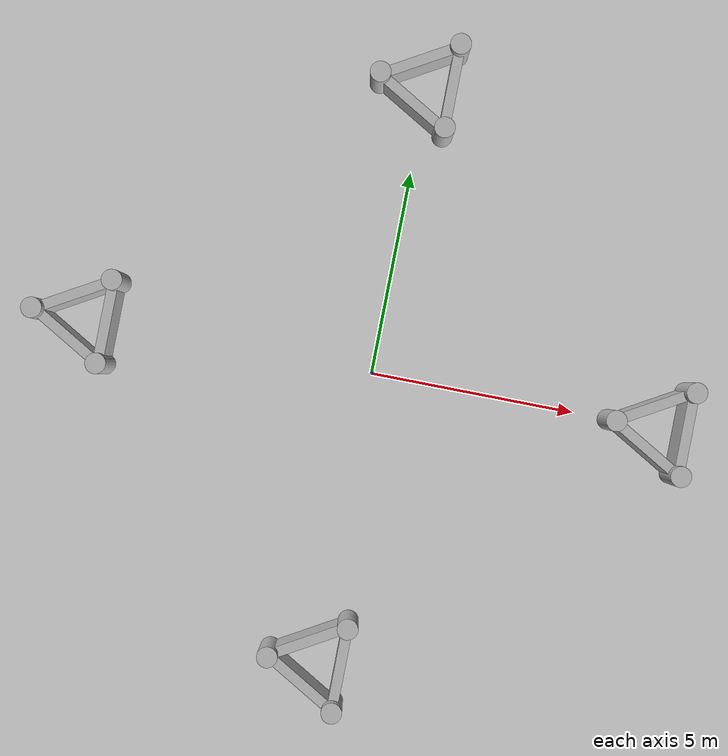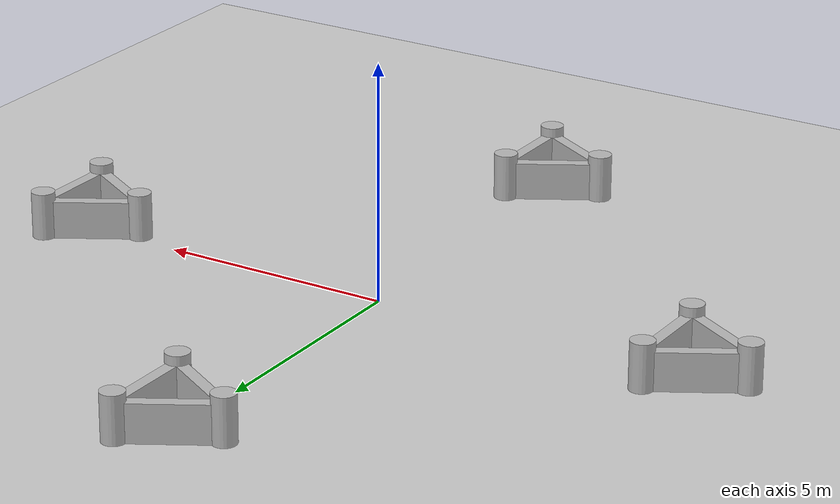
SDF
<sdf version="1.5">
 <world name="default">
  <include><uri>model://sun</uri></include>
  <include><uri>model://ground_plane</uri></include>
  <model name="custom_model_moving_1">
   <pose>7 0 0 0 0 1.57</pose>
   <static>false</static>
   <include><uri>model://custom_mid_obj</uri></include>
   <plugin name="moving_plugin_y" filename="libmoving_plugin_y.so">
    <direction>0</direction>
    <linear_vel>1.0</linear_vel>
    <iterations>3000</iterations>
   </plugin>
  </model>
  <model name="custom_model_moving_2">
   <pose>-7 0 0 0 0 1.57</pose>
   <static>false</static>
   <include><uri>model://custom_mid_obj</uri></include>
   <plugin name="moving_plugin_y" filename="libmoving_plugin_y.so">
    <direction>2</direction>
    <linear_vel>1.0</linear_vel>
    <iterations>3000</iterations>
   </plugin>
  </model>
  <model name="custom_model_moving_3">
   <pose>0 -7 0 0 0 1.57</pose>
   <static>false</static>
   <include><uri>model://custom_mid_obj</uri></include>
   <plugin name="moving_plugin_y" filename="libmoving_plugin_y.so">
    <direction>3</direction>
    <linear_vel>1.0</linear_vel>
    <iterations>3000</iterations>
   </plugin>
  </model>
  <model name="custom_model_moving_4">
   <pose>0 7 0 0 0 1.57</pose>
   <static>false</static>
   <include><uri>model://custom_mid_obj</uri></include>
   <plugin name="moving_plugin_y" filename="libmoving_plugin_y.so">
    <direction>1</direction>
    <linear_vel>1.0</linear_vel>
    <iterations>3000</iterations>
   </plugin>
  </model>
 </world>
</sdf>

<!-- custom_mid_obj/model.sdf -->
<sdf version="1.5">
    <model name="custom_model">
        <pose>0 0 0.5 0 0 0</pose>
        <static>false</static>
        <link name="link">
            <inertial>
                <mass>1.0</mass>
                <inertia>
                    <ixx>0.083</ixx>
                    <ixy>0.0</ixy>
                    <ixz>0.0</ixz>
                    <iyy>0.083</iyy>
                    <iyz>0.0</iyz>
                    <izz>0.083</izz>
                </inertia>
            </inertial>
            <collision name="collision1_cylinder">
                <pose>0 1.155 0.1 0 0 0</pose>
                <geometry>
                    <cylinder>
                        <radius>0.25</radius>
                        <length>1</length>
                    </cylinder>
                </geometry>
            </collision>
            <collision name="collision2_cylinder">
                <pose>-1 -0.577 0.1 0 0 0</pose>
                <geometry>
                    <cylinder>
                        <radius>0.25</radius>
                        <length>1</length>
                    </cylinder>
                </geometry>
            </collision>
            <collision name="collision3_cylinder">
                <pose>1 -0.577 0.1 0 0 0</pose>
                <geometry>
                    <cylinder>
                        <radius>0.25</radius>
                        <length>1</length>
                    </cylinder>
                </geometry>
            </collision>
            <collision name="collision1_box">
                <pose>0.4996 0.2885 0 0 0 2.0944</pose>
                <geometry>
                    <box>
                        <size>2 0.25 0.8</size>
                    </box>
                </geometry>
            </collision>
            <collision name="collision2_box">
                <pose>-0.4996 0.2885 0 0 0 4.189</pose>
                <geometry>
                    <box>
                        <size>2 0.25 0.8</size>
                    </box>
                </geometry>
            </collision>
            <collision name="collision3_box">
                <pose>0 -0.577 0 0 0 0</pose>
                <geometry>
                    <box>
                        <size>2 0.25 0.8</size>
                    </box>
                </geometry>
            </collision>
            <visual name="visual1_cylinder">
                <pose>0 1.155 0.1 0 0 0</pose>
                <geometry>
                    <cylinder>
                        <radius>0.25</radius>
                        <length>1</length>
                    </cylinder>
                </geometry>
            </visual>
            <visual name="visual2_cylinder">
                <pose>-1 -0.577 0.1 0 0 0</pose>
                <geometry>
                    <cylinder>
                        <radius>0.25</radius>
                        <length>1</length>
                    </cylinder>
                </geometry>
            </visual>
            <visual name="visual3_cylinder">
                <pose>1 -0.577 0.1 0 0 0</pose>
                <geometry>
                    <cylinder>
                        <radius>0.25</radius>
                        <length>1</length>
                    </cylinder>
                </geometry>
            </visual>
            <visual name="visual1_box">
                <pose>0.4996 0.2885 0 0 0 2.0944</pose>
                <geometry>
                    <box>
                        <size>2 0.25 0.8</size>
                    </box>
                </geometry>
            </visual>
            <visual name="visual2_box">
                <pose>-0.4996 0.2885 0 0 0 4.189</pose>
                <geometry>
                    <box>
                        <size>2 0.25 0.8</size>
                    </box>
                </geometry>
            </visual>
            <visual name="visual3_box">
                <pose>0 -0.577 0 0 0 0</pose>
                <geometry>
                    <box>
                        <size>2 0.25 0.8</size>
                    </box>
                </geometry>
            </visual>
        </link>
    </model>
</sdf>
